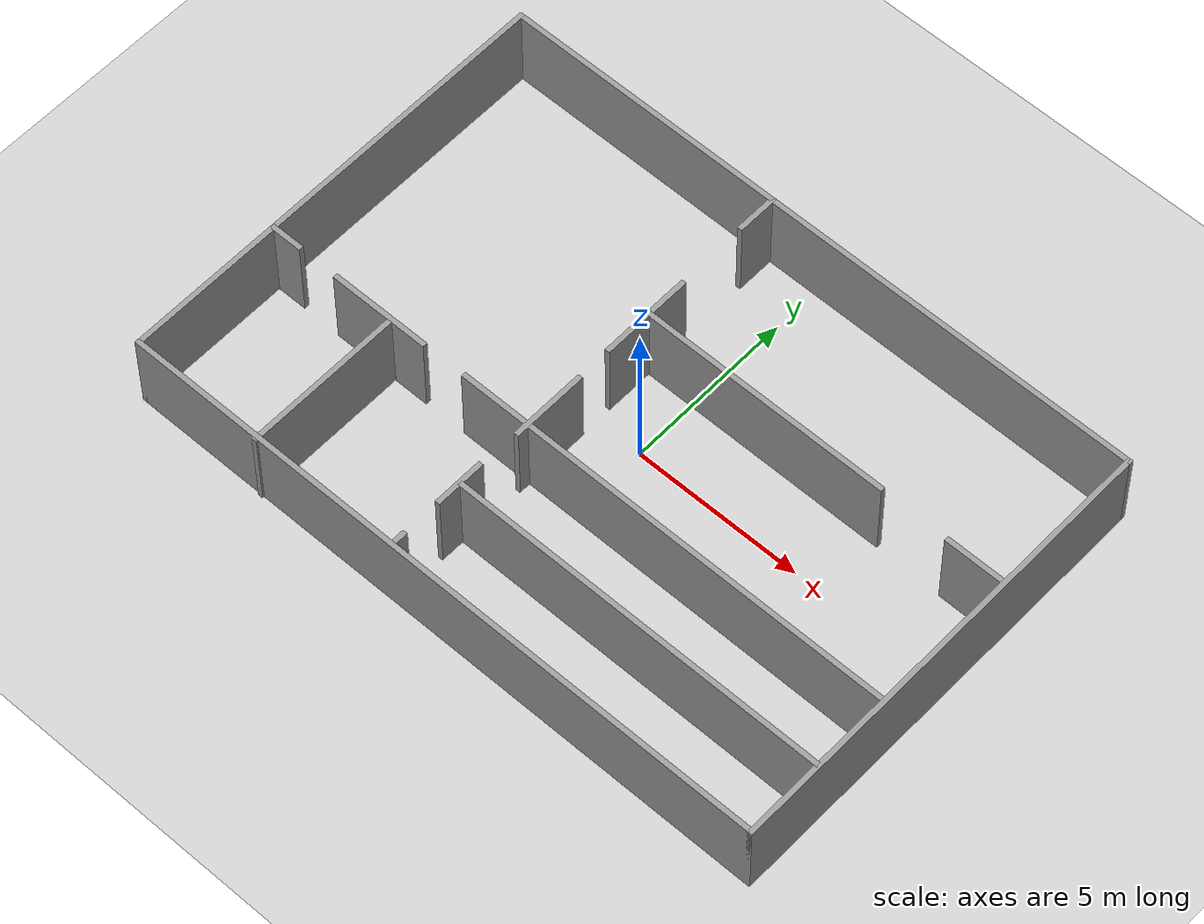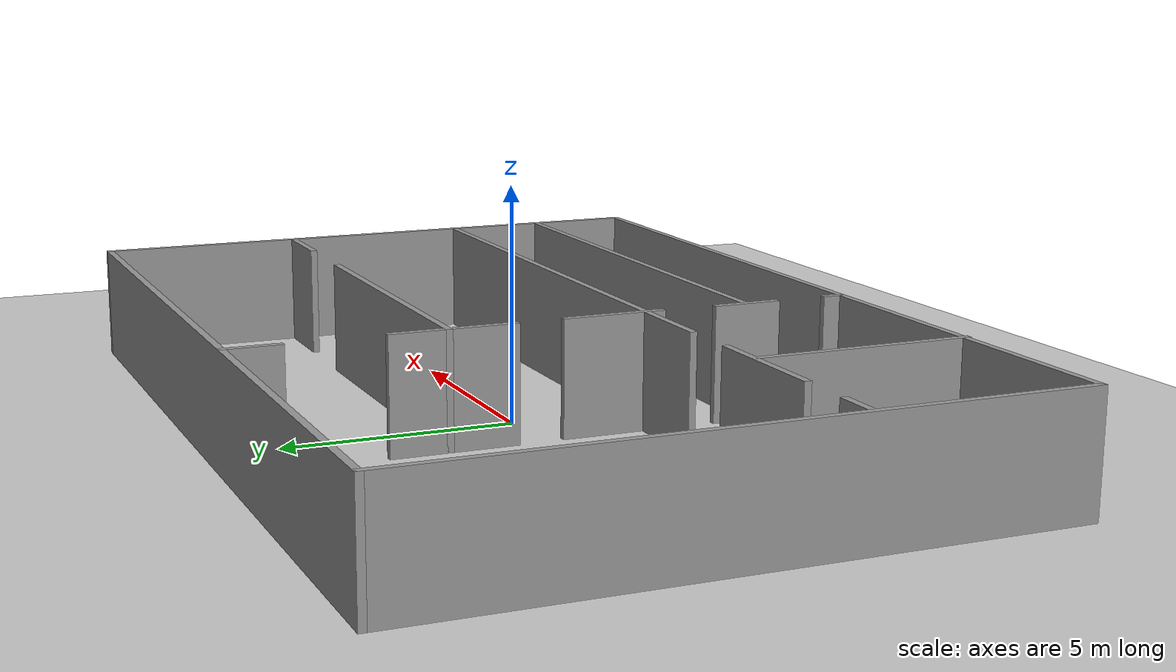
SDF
<sdf version="1.7">
 <world name="default">
  <light name="sun" type="directional">
   <pose>0 0 10 0 -0 0</pose>
   <diffuse>0.8 0.8 0.8 1</diffuse>
   <specular>0.2 0.2 0.2 1</specular>
   <attenuation>
    <range>1000</range>
    <constant>0.9</constant>
    <linear>0.01</linear>
    <quadratic>0.001</quadratic>
   </attenuation>
   <direction>-0.5 0.1 -0.9</direction>
   <spot><inner_angle>0</inner_angle><outer_angle>0</outer_angle><falloff>0</falloff></spot>
  </light>
  <gravity>0 0 -9.8</gravity>
  <magnetic_field>6e-06 2.3e-05 -4.2e-05</magnetic_field>
  <atmosphere type="adiabatic"/>
  <physics type="ode">
   <max_step_size>0.001</max_step_size>
   <real_time_factor>1</real_time_factor>
   <real_time_update_rate>1000</real_time_update_rate>
  </physics>
  <scene><ambient>0.4 0.4 0.4 1</ambient><background>0.7 0.7 0.7 1</background><shadows>1</shadows></scene>
  <spherical_coordinates>
   <surface_model>EARTH_WGS84</surface_model>
   <latitude_deg>0</latitude_deg>
   <longitude_deg>0</longitude_deg>
   <elevation>0</elevation>
   <heading_deg>0</heading_deg>
  </spherical_coordinates>
  <model name="Untitled">
   <pose>-0.112825 -0.266275 0 0 -0 0</pose>
   <link name="Wall_0">
    <collision name="Wall_0_Collision">
     <geometry><box><size>13.5 0.15 2.5</size></box></geometry>
     <pose>0 0 1.25 0 -0 0</pose>
    </collision>
    <visual name="Wall_0_Visual">
     <pose>0 0 1.25 0 -0 0</pose>
     <geometry><box><size>13.5 0.15 2.5</size></box></geometry>
     <material>
      <script><uri>file://media/materials/scripts/gazebo.material</uri><name>Gazebo/Grey</name></script>
      <ambient>1 1 1 1</ambient>
     </material>
     <meta><layer>0</layer></meta>
    </visual>
    <pose>-9.8 0.02696 0 0 -0 -1.5708</pose>
   </link>
   <link name="Wall_1">
    <collision name="Wall_1_Collision">
     <geometry><box><size>19.75 0.15 2.5</size></box></geometry>
     <pose>0 0 1.25 0 -0 0</pose>
    </collision>
    <visual name="Wall_1_Visual">
     <pose>0 0 1.25 0 -0 0</pose>
     <geometry><box><size>19.75 0.15 2.5</size></box></geometry>
     <material>
      <script><uri>file://media/materials/scripts/gazebo.material</uri><name>Gazebo/Grey</name></script>
      <ambient>1 1 1 1</ambient>
     </material>
     <meta><layer>0</layer></meta>
    </visual>
    <pose>0 -6.64804 0 0 -0 0</pose>
   </link>
   <link name="Wall_11">
    <collision name="Wall_11_Collision">
     <geometry><box><size>11.25 0.15 2.5</size></box></geometry>
     <pose>0 0 1.25 0 -0 0</pose>
    </collision>
    <visual name="Wall_11_Visual">
     <pose>0 0 1.25 0 -0 0</pose>
     <geometry><box><size>11.25 0.15 2.5</size></box></geometry>
     <material>
      <script><uri>file://media/materials/scripts/gazebo.material</uri><name>Gazebo/Grey</name></script>
      <ambient>1 1 1 1</ambient>
     </material>
     <meta><layer>0</layer></meta>
    </visual>
    <pose>4.22502 -4.35681 0 0 -0 0</pose>
   </link>
   <link name="Wall_13">
    <collision name="Wall_13_Collision">
     <geometry><box><size>7.5 0.15 2.5</size></box></geometry>
     <pose>0 0 1.25 0 -0 0</pose>
    </collision>
    <visual name="Wall_13_Visual">
     <pose>0 0 1.25 0 -0 0</pose>
     <geometry><box><size>7.5 0.15 2.5</size></box></geometry>
     <material>
      <script><uri>file://media/materials/scripts/gazebo.material</uri><name>Gazebo/Grey</name></script>
      <ambient>1 1 1 1</ambient>
     </material>
     <meta><layer>0</layer></meta>
    </visual>
    <pose>2.31041 2.19738 0 0 -0 0</pose>
   </link>
   <link name="Wall_15">
    <collision name="Wall_15_Collision">
     <geometry><box><size>1.75 0.15 2.5</size></box></geometry>
     <pose>0 0 1.25 0 -0 0</pose>
    </collision>
    <visual name="Wall_15_Visual">
     <pose>0 0 1.25 0 -0 0</pose>
     <geometry><box><size>1.75 0.15 2.5</size></box></geometry>
     <material>
      <script><uri>file://media/materials/scripts/gazebo.material</uri><name>Gazebo/Grey</name></script>
      <ambient>1 1 1 1</ambient>
     </material>
     <meta><layer>0</layer></meta>
    </visual>
    <pose>8.88879 2.17727 0 0 -0 0</pose>
   </link>
   <link name="Wall_17">
    <collision name="Wall_17_Collision">
     <geometry><box><size>1.25 0.15 2.5</size></box></geometry>
     <pose>0 0 1.25 0 -0 0</pose>
    </collision>
    <visual name="Wall_17_Visual">
     <pose>0 0 1.25 0 -0 0</pose>
     <geometry><box><size>1.25 0.15 2.5</size></box></geometry>
     <material>
      <script><uri>file://media/materials/scripts/gazebo.material</uri><name>Gazebo/Grey</name></script>
      <ambient>1 1 1 1</ambient>
     </material>
     <meta><layer>0</layer></meta>
    </visual>
    <pose>-1.40482 6.13271 0 0 -0 -1.5708</pose>
   </link>
   <link name="Wall_19">
    <collision name="Wall_19_Collision">
     <geometry><box><size>2.75 0.15 2.5</size></box></geometry>
     <pose>0 0 1.25 0 -0 0</pose>
    </collision>
    <visual name="Wall_19_Visual">
     <pose>0 0 1.25 0 -0 0</pose>
     <geometry><box><size>2.75 0.15 2.5</size></box></geometry>
     <material>
      <script><uri>file://media/materials/scripts/gazebo.material</uri><name>Gazebo/Grey</name></script>
      <ambient>1 1 1 1</ambient>
     </material>
     <meta><layer>0</layer></meta>
    </visual>
    <pose>-1.36459 2.08408 0 0 -0 -1.5708</pose>
   </link>
   <link name="Wall_2">
    <collision name="Wall_2_Collision">
     <geometry><box><size>13.5 0.15 2.5</size></box></geometry>
     <pose>0 0 1.25 0 -0 0</pose>
    </collision>
    <visual name="Wall_2_Visual">
     <pose>0 0 1.25 0 -0 0</pose>
     <geometry><box><size>13.5 0.15 2.5</size></box></geometry>
     <material>
      <script><uri>file://media/materials/scripts/gazebo.material</uri><name>Gazebo/Grey</name></script>
      <ambient>1 1 1 1</ambient>
     </material>
     <meta><layer>0</layer></meta>
    </visual>
    <pose>9.8 0.02696 0 0 -0 1.5708</pose>
   </link>
   <link name="Wall_21">
    <collision name="Wall_21_Collision">
     <geometry><box><size>2.25 0.15 2.5</size></box></geometry>
     <pose>0 0 1.25 0 -0 0</pose>
    </collision>
    <visual name="Wall_21_Visual">
     <pose>0 0 1.25 0 -0 0</pose>
     <geometry><box><size>2.25 0.15 2.5</size></box></geometry>
     <material>
      <script><uri>file://media/materials/scripts/gazebo.material</uri><name>Gazebo/Grey</name></script>
      <ambient>1 1 1 1</ambient>
     </material>
     <meta><layer>0</layer></meta>
    </visual>
    <pose>-1.34448 -1.36681 0 0 -0 -1.5708</pose>
   </link>
   <link name="Wall_23">
    <collision name="Wall_23_Collision">
     <geometry><box><size>1.5 0.15 2.5</size></box></geometry>
     <pose>0 0 1.25 0 -0 0</pose>
    </collision>
    <visual name="Wall_23_Visual">
     <pose>0 0 1.25 0 -0 0</pose>
     <geometry><box><size>1.5 0.15 2.5</size></box></geometry>
     <material>
      <script><uri>file://media/materials/scripts/gazebo.material</uri><name>Gazebo/Grey</name></script>
      <ambient>1 1 1 1</ambient>
     </material>
     <meta><layer>0</layer></meta>
    </visual>
    <pose>-1.40482 -4.37089 0 0 -0 -1.5708</pose>
   </link>
   <link name="Wall_25">
    <collision name="Wall_25_Collision">
     <geometry><box><size>0.5 0.15 2.5</size></box></geometry>
     <pose>0 0 1.25 0 -0 0</pose>
    </collision>
    <visual name="Wall_25_Visual">
     <pose>0 0 1.25 0 -0 0</pose>
     <geometry><box><size>0.5 0.15 2.5</size></box></geometry>
     <material>
      <script><uri>file://media/materials/scripts/gazebo.material</uri><name>Gazebo/Grey</name></script>
      <ambient>1 1 1 1</ambient>
     </material>
     <meta><layer>0</layer></meta>
    </visual>
    <pose>-1.40482 -6.44543 0 0 -0 -1.5708</pose>
   </link>
   <link name="Wall_27">
    <collision name="Wall_27_Collision">
     <geometry><box><size>4.75 0.15 2.5</size></box></geometry>
     <pose>0 0 1.25 0 -0 0</pose>
    </collision>
    <visual name="Wall_27_Visual">
     <pose>0 0 1.25 0 -0 0</pose>
     <geometry><box><size>4.75 0.15 2.5</size></box></geometry>
     <material>
      <script><uri>file://media/materials/scripts/gazebo.material</uri><name>Gazebo/Grey</name></script>
      <ambient>1 1 1 1</ambient>
     </material>
     <meta><layer>0</layer></meta>
    </visual>
    <pose>-5.80444 -4.40196 0 0 -0 -1.5708</pose>
   </link>
   <link name="Wall_3">
    <collision name="Wall_3_Collision">
     <geometry><box><size>19.75 0.15 2.5</size></box></geometry>
     <pose>0 0 1.25 0 -0 0</pose>
    </collision>
    <visual name="Wall_3_Visual">
     <pose>0 0 1.25 0 -0 0</pose>
     <geometry><box><size>19.75 0.15 2.5</size></box></geometry>
     <material>
      <script><uri>file://media/materials/scripts/gazebo.material</uri><name>Gazebo/Grey</name></script>
      <ambient>1 1 1 1</ambient>
     </material>
     <meta><layer>0</layer></meta>
    </visual>
    <pose>0 6.70196 0 0 -0 3.14159</pose>
   </link>
   <link name="Wall_5">
    <collision name="Wall_5_Collision">
     <geometry><box><size>1 0.15 2.5</size></box></geometry>
     <pose>0 0 1.25 0 -0 0</pose>
    </collision>
    <visual name="Wall_5_Visual">
     <pose>0 0 1.25 0 -0 0</pose>
     <geometry><box><size>1 0.15 2.5</size></box></geometry>
     <material>
      <script><uri>file://media/materials/scripts/gazebo.material</uri><name>Gazebo/Grey</name></script>
      <ambient>1 1 1 1</ambient>
     </material>
     <meta><layer>0</layer></meta>
    </visual>
    <pose>-9.35237 -2.08307 0 0 -0 0</pose>
   </link>
   <link name="Wall_7">
    <collision name="Wall_7_Collision">
     <geometry><box><size>3 0.15 2.5</size></box></geometry>
     <pose>0 0 1.25 0 -0 0</pose>
    </collision>
    <visual name="Wall_7_Visual">
     <pose>0 0 1.25 0 -0 0</pose>
     <geometry><box><size>3 0.15 2.5</size></box></geometry>
     <material>
      <script><uri>file://media/materials/scripts/gazebo.material</uri><name>Gazebo/Grey</name></script>
      <ambient>1 1 1 1</ambient>
     </material>
     <meta><layer>0</layer></meta>
    </visual>
    <pose>-6.19272 -2.09828 0 0 -0 0</pose>
   </link>
   <link name="Wall_9">
    <collision name="Wall_9_Collision">
     <geometry><box><size>13.25 0.15 2.5</size></box></geometry>
     <pose>0 0 1.25 0 -0 0</pose>
    </collision>
    <visual name="Wall_9_Visual">
     <pose>0 0 1.25 0 -0 0</pose>
     <geometry><box><size>13.25 0.15 2.5</size></box></geometry>
     <material>
      <script><uri>file://media/materials/scripts/gazebo.material</uri><name>Gazebo/Grey</name></script>
      <ambient>1 1 1 1</ambient>
     </material>
     <meta><layer>0</layer></meta>
    </visual>
    <pose>3.17552 -2.08307 0 0 -0 0</pose>
   </link>
   <static>1</static>
  </model>
  <model name="ground_plane">
   <static>1</static>
   <link name="link">
    <collision name="collision">
     <geometry><plane><normal>0 0 1</normal><size>100 100</size></plane></geometry>
     <surface>
      <contact><collide_bitmask>65535</collide_bitmask></contact>
      <friction><ode><mu>100</mu><mu2>50</mu2></ode></friction>
     </surface>
    </collision>
    <visual name="visual">
     <cast_shadows>0</cast_shadows>
     <geometry><plane><normal>0 0 1</normal><size>100 100</size></plane></geometry>
     <material>
      <script><uri>file://media/materials/scripts/gazebo.material</uri><name>Gazebo/Grey</name></script>
     </material>
    </visual>
   </link>
  </model>
 </world>
</sdf>
